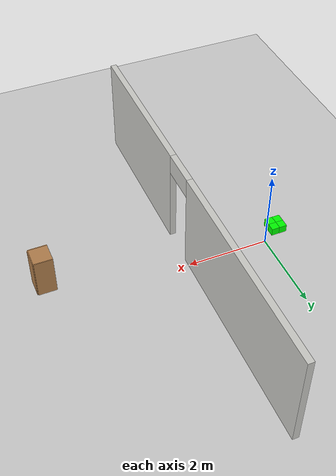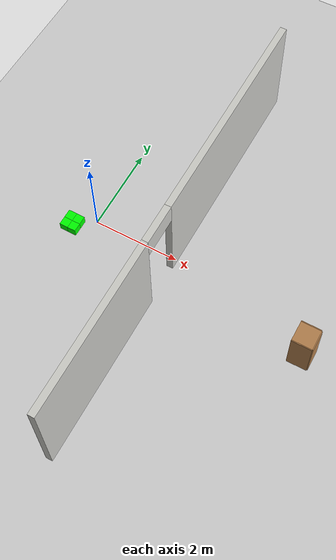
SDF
<sdf version="1.6">
 <world name="default">
  <light name="sun" type="directional">
   <pose>0 0 10 0 -0 0</pose>
   <diffuse>0.8 0.8 0.8 1</diffuse>
   <specular>0.1 0.1 0.1 1</specular>
   <attenuation>
    <range>1000</range>
    <constant>0.9</constant>
    <linear>0.01</linear>
    <quadratic>0.001</quadratic>
   </attenuation>
   <direction>-0.5 0.5 -1</direction>
  </light>
  <model name="ground_plane">
   <static>1</static>
   <link name="link">
    <collision name="collision">
     <geometry><plane><normal>0 0 1</normal><size>100 100</size></plane></geometry>
     <surface><friction><ode><mu>100</mu><mu2>50</mu2></ode></friction></surface>
    </collision>
    <visual name="visual">
     <cast_shadows>0</cast_shadows>
     <geometry><plane><normal>0 0 1</normal><size>100 100</size></plane></geometry>
     <material>
      <script><uri>file://media/materials/scripts/gazebo.material</uri><name>Gazebo/Grey</name></script>
     </material>
    </visual>
   </link>
  </model>
  <gravity>0 0 -9.8</gravity>
  <magnetic_field>6e-06 2.3e-05 -4.2e-05</magnetic_field>
  <atmosphere type="adiabatic"/>
  <physics name="default_physics" default="0" type="ode">
   <max_step_size>0.001</max_step_size>
   <real_time_factor>1</real_time_factor>
   <real_time_update_rate>1000</real_time_update_rate>
  </physics>
  <scene><ambient>0.4 0.4 0.4 1</ambient><background>0.7 0.7 0.7 1</background><shadows>1</shadows></scene>
  <spherical_coordinates>
   <surface_model>EARTH_WGS84</surface_model>
   <latitude_deg>0</latitude_deg>
   <longitude_deg>0</longitude_deg>
   <elevation>0</elevation>
   <heading_deg>0</heading_deg>
  </spherical_coordinates>
  <model name="wall1_kitchen">
   <pose>1.96463 -0.011263 0 0 -0 0</pose>
   <link name="Wall_31">
    <pose>0 0 0 0 0 -1.5708</pose>
    <visual name="Wall_31_Visual_0">
     <pose>-2.39867 0 1.25 0 -0 0</pose>
     <geometry><box><size>5.20266 0.15 2.5</size></box></geometry>
     <material>
      <script><uri>file://media/materials/scripts/gazebo.material</uri><name>Gazebo/CeilingTiled</name></script>
      <ambient>1 1 1 1</ambient>
     </material>
     <meta><layer>0</layer></meta>
    </visual>
    <collision name="Wall_31_Collision_0">
     <geometry><box><size>5.20266 0.15 2.5</size></box></geometry>
     <pose>-2.39867 0 1.25 0 -0 0</pose>
    </collision>
    <visual name="Wall_31_Visual_1">
     <pose>3.05133 0 1.25 0 -0 0</pose>
     <geometry><box><size>3.89734 0.15 2.5</size></box></geometry>
     <material>
      <script><uri>file://media/materials/scripts/gazebo.material</uri><name>Gazebo/CeilingTiled</name></script>
      <ambient>1 1 1 1</ambient>
     </material>
     <meta><layer>0</layer></meta>
    </visual>
    <collision name="Wall_31_Collision_1">
     <geometry><box><size>3.89734 0.15 2.5</size></box></geometry>
     <pose>3.05133 0 1.25 0 -0 0</pose>
    </collision>
    <visual name="Wall_31_Visual_2">
     <pose>0.652662 0 2.25 0 -0 0</pose>
     <geometry><box><size>0.9 0.15 0.5</size></box></geometry>
     <material>
      <script><uri>file://media/materials/scripts/gazebo.material</uri><name>Gazebo/CeilingTiled</name></script>
      <ambient>1 1 1 1</ambient>
     </material>
     <meta><layer>0</layer></meta>
    </visual>
    <collision name="Wall_31_Collision_2">
     <geometry><box><size>0.9 0.15 0.5</size></box></geometry>
     <pose>0.652662 0 2.25 0 -0 0</pose>
    </collision>
   </link>
   <static>1</static>
  </model>
  <model name="cube_g">
   <link name="link_2">
    <pose>0 0 0.1 0 -0 0</pose>
    <inertial>
     <mass>1</mass>
     <inertia>
      <ixx>0.166667</ixx>
      <ixy>0</ixy>
      <ixz>0</ixz>
      <iyy>0.166667</iyy>
      <iyz>0</iyz>
      <izz>0.166667</izz>
     </inertia>
    </inertial>
    <visual name="visual">
     <geometry><box><size>0.2 0.2 0.2</size></box></geometry>
     <material>
      <lighting>1</lighting>
      <script><uri>file://media/materials/scripts/gazebo.material</uri><name>Gazebo/Grey</name></script>
      <ambient>0 1 0 1</ambient>
      <diffuse>0 1 0 1</diffuse>
      <specular>0 0 0 1</specular>
      <emissive>0 0 0 1</emissive>
      <shader type="vertex"><normal_map>__default__</normal_map></shader>
     </material>
    </visual>
    <collision name="collision">
     <geometry><box><size>0.2 0.2 0.2</size></box></geometry>
     <surface>
      <friction>
       <ode><mu>1</mu><mu2>1</mu2><fdir1>0 0 0</fdir1><slip1>0</slip1><slip2>0</slip2></ode>
       <torsional>
        <coefficient>1</coefficient>
        <patch_radius>0</patch_radius>
        <surface_radius>0</surface_radius>
        <use_patch_radius>1</use_patch_radius>
        <ode><slip>0</slip></ode>
       </torsional>
      </friction>
      <bounce><restitution_coefficient>0</restitution_coefficient><threshold>1e+06</threshold></bounce>
      <contact>
       <collide_without_contact>0</collide_without_contact>
       <collide_without_contact_bitmask>1</collide_without_contact_bitmask>
       <collide_bitmask>1</collide_bitmask>
       <ode>
        <soft_cfm>0</soft_cfm>
        <soft_erp>0.2</soft_erp>
        <kp>1e+13</kp>
        <kd>1</kd>
        <max_vel>0.01</max_vel>
        <min_depth>0</min_depth>
       </ode>
       <bullet>
        <split_impulse>1</split_impulse>
        <split_impulse_penetration_threshold>-0.01</split_impulse_penetration_threshold>
        <soft_cfm>0</soft_cfm>
        <soft_erp>0.2</soft_erp>
        <kp>1e+13</kp>
        <kd>1</kd>
       </bullet>
      </contact>
     </surface>
    </collision>
   </link>
   <static>1</static>
   <pose>-0.533144 -0.411728 0 0 -0 0</pose>
  </model>
  <model name="cube_g_0">
   <link name="link_2">
    <pose>0 0 0.1 0 -0 0</pose>
    <inertial>
     <mass>1</mass>
     <inertia>
      <ixx>0.166667</ixx>
      <ixy>0</ixy>
      <ixz>0</ixz>
      <iyy>0.166667</iyy>
      <iyz>0</iyz>
      <izz>0.166667</izz>
     </inertia>
    </inertial>
    <visual name="visual">
     <geometry><box><size>0.2 0.2 0.2</size></box></geometry>
     <material>
      <lighting>1</lighting>
      <script><uri>file://media/materials/scripts/gazebo.material</uri><name>Gazebo/Grey</name></script>
      <ambient>0 1 0 1</ambient>
      <diffuse>0 1 0 1</diffuse>
      <specular>0 0 0 1</specular>
      <emissive>0 0 0 1</emissive>
      <shader type="vertex"><normal_map>__default__</normal_map></shader>
     </material>
    </visual>
    <collision name="collision">
     <geometry><box><size>0.2 0.2 0.2</size></box></geometry>
     <surface>
      <friction>
       <ode><mu>1</mu><mu2>1</mu2><fdir1>0 0 0</fdir1><slip1>0</slip1><slip2>0</slip2></ode>
       <torsional>
        <coefficient>1</coefficient>
        <patch_radius>0</patch_radius>
        <surface_radius>0</surface_radius>
        <use_patch_radius>1</use_patch_radius>
        <ode><slip>0</slip></ode>
       </torsional>
      </friction>
      <bounce><restitution_coefficient>0</restitution_coefficient><threshold>1e+06</threshold></bounce>
      <contact>
       <collide_without_contact>0</collide_without_contact>
       <collide_without_contact_bitmask>1</collide_without_contact_bitmask>
       <collide_bitmask>1</collide_bitmask>
       <ode>
        <soft_cfm>0</soft_cfm>
        <soft_erp>0.2</soft_erp>
        <kp>1e+13</kp>
        <kd>1</kd>
        <max_vel>0.01</max_vel>
        <min_depth>0</min_depth>
       </ode>
       <bullet>
        <split_impulse>1</split_impulse>
        <split_impulse_penetration_threshold>-0.01</split_impulse_penetration_threshold>
        <soft_cfm>0</soft_cfm>
        <soft_erp>0.2</soft_erp>
        <kp>1e+13</kp>
        <kd>1</kd>
       </bullet>
      </contact>
     </surface>
    </collision>
   </link>
   <static>1</static>
   <pose>-0.534699 -0.212887 0 0 -0 0</pose>
  </model>
  <model name="cube_g_1">
   <link name="link_2">
    <pose>0 0 0.1 0 -0 0</pose>
    <inertial>
     <mass>1</mass>
     <inertia>
      <ixx>0.166667</ixx>
      <ixy>0</ixy>
      <ixz>0</ixz>
      <iyy>0.166667</iyy>
      <iyz>0</iyz>
      <izz>0.166667</izz>
     </inertia>
    </inertial>
    <visual name="visual">
     <geometry><box><size>0.2 0.2 0.2</size></box></geometry>
     <material>
      <lighting>1</lighting>
      <script><uri>file://media/materials/scripts/gazebo.material</uri><name>Gazebo/Grey</name></script>
      <ambient>0 1 0 1</ambient>
      <diffuse>0 1 0 1</diffuse>
      <specular>0 0 0 1</specular>
      <emissive>0 0 0 1</emissive>
      <shader type="vertex"><normal_map>__default__</normal_map></shader>
     </material>
    </visual>
    <collision name="collision">
     <geometry><box><size>0.2 0.2 0.2</size></box></geometry>
     <surface>
      <friction>
       <ode><mu>1</mu><mu2>1</mu2><fdir1>0 0 0</fdir1><slip1>0</slip1><slip2>0</slip2></ode>
       <torsional>
        <coefficient>1</coefficient>
        <patch_radius>0</patch_radius>
        <surface_radius>0</surface_radius>
        <use_patch_radius>1</use_patch_radius>
        <ode><slip>0</slip></ode>
       </torsional>
      </friction>
      <bounce><restitution_coefficient>0</restitution_coefficient><threshold>1e+06</threshold></bounce>
      <contact>
       <collide_without_contact>0</collide_without_contact>
       <collide_without_contact_bitmask>1</collide_without_contact_bitmask>
       <collide_bitmask>1</collide_bitmask>
       <ode>
        <soft_cfm>0</soft_cfm>
        <soft_erp>0.2</soft_erp>
        <kp>1e+13</kp>
        <kd>1</kd>
        <max_vel>0.01</max_vel>
        <min_depth>0</min_depth>
       </ode>
       <bullet>
        <split_impulse>1</split_impulse>
        <split_impulse_penetration_threshold>-0.01</split_impulse_penetration_threshold>
        <soft_cfm>0</soft_cfm>
        <soft_erp>0.2</soft_erp>
        <kp>1e+13</kp>
        <kd>1</kd>
       </bullet>
      </contact>
     </surface>
    </collision>
   </link>
   <static>1</static>
   <pose>-0.34122 -0.412689 0 0 -0 0</pose>
  </model>
  <model name="cube_g_2">
   <link name="link_2">
    <pose>0 0 0.1 0 -0 0</pose>
    <inertial>
     <mass>1</mass>
     <inertia>
      <ixx>0.166667</ixx>
      <ixy>0</ixy>
      <ixz>0</ixz>
      <iyy>0.166667</iyy>
      <iyz>0</iyz>
      <izz>0.166667</izz>
     </inertia>
    </inertial>
    <visual name="visual">
     <geometry><box><size>0.2 0.2 0.2</size></box></geometry>
     <material>
      <lighting>1</lighting>
      <script><uri>file://media/materials/scripts/gazebo.material</uri><name>Gazebo/Grey</name></script>
      <ambient>0 1 0 1</ambient>
      <diffuse>0 1 0 1</diffuse>
      <specular>0 0 0 1</specular>
      <emissive>0 0 0 1</emissive>
      <shader type="vertex"><normal_map>__default__</normal_map></shader>
     </material>
    </visual>
    <collision name="collision">
     <geometry><box><size>0.2 0.2 0.2</size></box></geometry>
     <surface>
      <friction>
       <ode><mu>1</mu><mu2>1</mu2><fdir1>0 0 0</fdir1><slip1>0</slip1><slip2>0</slip2></ode>
       <torsional>
        <coefficient>1</coefficient>
        <patch_radius>0</patch_radius>
        <surface_radius>0</surface_radius>
        <use_patch_radius>1</use_patch_radius>
        <ode><slip>0</slip></ode>
       </torsional>
      </friction>
      <bounce><restitution_coefficient>0</restitution_coefficient><threshold>1e+06</threshold></bounce>
      <contact>
       <collide_without_contact>0</collide_without_contact>
       <collide_without_contact_bitmask>1</collide_without_contact_bitmask>
       <collide_bitmask>1</collide_bitmask>
       <ode>
        <soft_cfm>0</soft_cfm>
        <soft_erp>0.2</soft_erp>
        <kp>1e+13</kp>
        <kd>1</kd>
        <max_vel>0.01</max_vel>
        <min_depth>0</min_depth>
       </ode>
       <bullet>
        <split_impulse>1</split_impulse>
        <split_impulse_penetration_threshold>-0.01</split_impulse_penetration_threshold>
        <soft_cfm>0</soft_cfm>
        <soft_erp>0.2</soft_erp>
        <kp>1e+13</kp>
        <kd>1</kd>
       </bullet>
      </contact>
     </surface>
    </collision>
   </link>
   <static>1</static>
   <pose>-0.341565 -0.213796 0 0 -0 0</pose>
  </model>
  <model name="cabinet">
   <static>1</static>
   <link name="cabinet_bottom_plate">
    <inertial>
     <pose>0 0 -1 0 -0 0</pose>
     <inertia><ixx>2.05</ixx><ixy>0</ixy><ixz>0</ixz><iyy>2.05</iyy><iyz>0</iyz><izz>2.05</izz></inertia>
     <mass>25</mass>
    </inertial>
    <collision name="cabinet_bottom_plate_geom">
     <pose>0 0 0.01 0 -0 0</pose>
     <geometry><box><size>0.45 0.45 0.02</size></box></geometry>
    </collision>
    <visual name="cabinet_bottom_plate_geom_visual">
     <pose>0 0 0.01 0 -0 0</pose>
     <geometry><box><size>0.45 0.45 0.02</size></box></geometry>
     <material>
      <script><uri>file://media/materials/scripts/gazebo.material</uri><name>Gazebo/Wood</name></script>
     </material>
    </visual>
    <collision name="cabinet_bottom_plate_geom_cabinet_back_plate">
     <pose>0.235 0 0.51 0 -0 0</pose>
     <geometry><box><size>0.02 0.45 1.02</size></box></geometry>
    </collision>
    <visual name="cabinet_bottom_plate_geom_cabinet_back_plate_visual">
     <pose>0.235 0 0.51 0 -0 0</pose>
     <geometry><box><size>0.02 0.45 1.02</size></box></geometry>
     <material>
      <script><uri>file://media/materials/scripts/gazebo.material</uri><name>Gazebo/Wood</name></script>
     </material>
    </visual>
    <collision name="cabinet_bottom_plate_geom_cabinet_left_plate">
     <pose>0 0.235 0.51 0 -0 0</pose>
     <geometry><box><size>0.45 0.02 1.02</size></box></geometry>
    </collision>
    <visual name="cabinet_bottom_plate_geom_cabinet_left_plate_visual">
     <pose>0 0.235 0.51 0 -0 0</pose>
     <geometry><box><size>0.45 0.02 1.02</size></box></geometry>
     <material>
      <script><uri>file://media/materials/scripts/gazebo.material</uri><name>Gazebo/Wood</name></script>
     </material>
    </visual>
    <collision name="cabinet_bottom_plate_geom_cabinet_middle_plate">
     <pose>0 0 0.51 0 -0 0</pose>
     <geometry><box><size>0.45 0.45 0.02</size></box></geometry>
    </collision>
    <visual name="cabinet_bottom_plate_geom_cabinet_middle_plate_visual">
     <pose>0 0 0.51 0 -0 0</pose>
     <geometry><box><size>0.45 0.45 0.02</size></box></geometry>
     <material>
      <script><uri>file://media/materials/scripts/gazebo.material</uri><name>Gazebo/Wood</name></script>
     </material>
    </visual>
    <collision name="cabinet_bottom_plate_geom_cabinet_right_plate">
     <pose>0 -0.235 0.51 0 -0 0</pose>
     <geometry><box><size>0.45 0.02 1.02</size></box></geometry>
    </collision>
    <visual name="cabinet_bottom_plate_geom_cabinet_right_plate_visual">
     <pose>0 -0.235 0.51 0 -0 0</pose>
     <geometry><box><size>0.45 0.02 1.02</size></box></geometry>
     <material>
      <script><uri>file://media/materials/scripts/gazebo.material</uri><name>Gazebo/Wood</name></script>
     </material>
    </visual>
    <collision name="cabinet_bottom_plate_geom_cabinet_top_plate">
     <pose>0 0 1.01 0 -0 0</pose>
     <geometry><box><size>0.45 0.45 0.02</size></box></geometry>
    </collision>
    <visual name="cabinet_bottom_plate_geom_cabinet_top_plate_visual">
     <pose>0 0 1.01 0 -0 0</pose>
     <geometry><box><size>0.45 0.45 0.02</size></box></geometry>
     <material>
      <script><uri>file://media/materials/scripts/gazebo.material</uri><name>Gazebo/Wood</name></script>
     </material>
    </visual>
   </link>
   <pose>5.33157 -0.734401 0 0 -0 0</pose>
  </model>
 </world>
</sdf>
